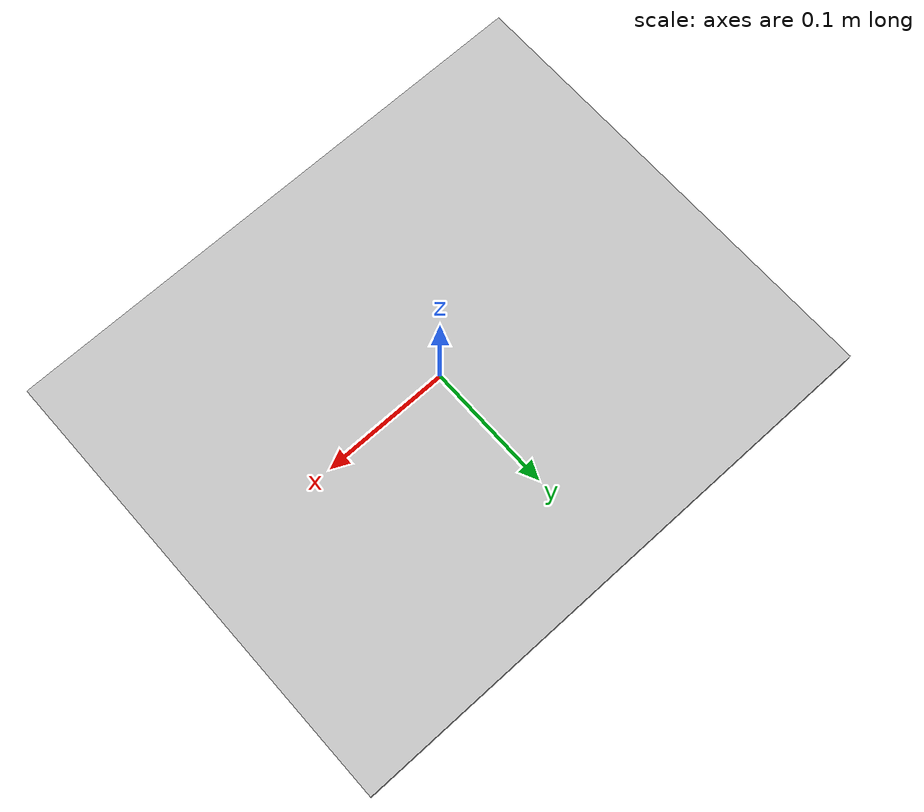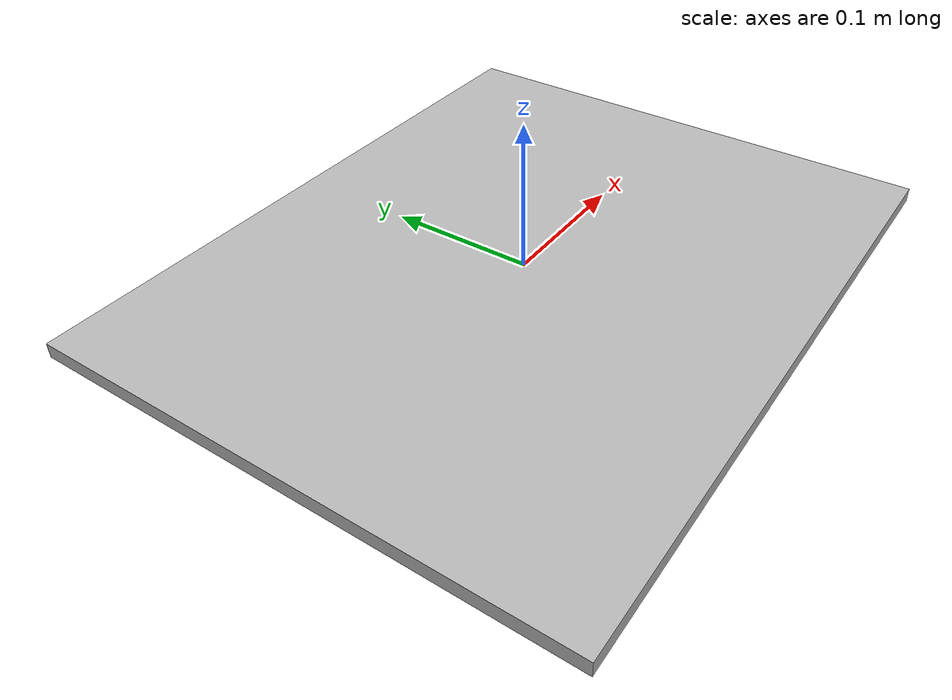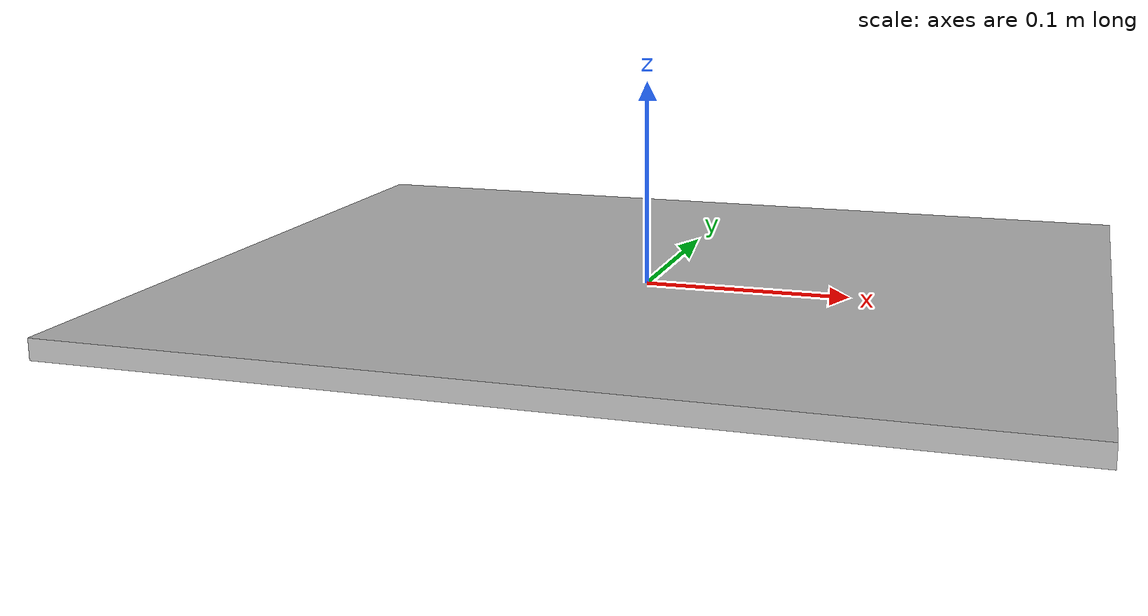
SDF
<?xml version='1.0'?>
<sdf version='1.6'>
	<model name='checkerboard'>
	  <link name='link'>
		<inertial>
		  <mass>1</mass>
		  <inertia>
			<ixx>0.166667</ixx>
			<ixy>0</ixy>
			<ixz>0</ixz>
			<iyy>0.166667</iyy>
			<iyz>0</iyz>
			<izz>0.166667</izz>
		  </inertia>
		  <pose frame=''>0 0 0 0 0 0</pose>
		</inertial>
		<self_collide>0</self_collide>
		<enable_wind>0</enable_wind>
		<kinematic>0</kinematic>
		<pose frame=''>0 0 0 0 0 0</pose>
		<gravity>1</gravity>
		<visual name='visual'>
		  <geometry>
			<mesh>
				<uri>model://checkerboard/meshes/checkerboard.dae</uri>
			</mesh>
		  </geometry>
            <material>
                <script>
                    <uri>model://checkerboard/materials/scripts</uri>
                    <uri>model://checkerboard/materials/textures</uri>
                    <name>checkerMat/Diffuse</name>
                </script>
            </material>
		  <pose frame=''>0 0 0 0 0 0</pose>
		  <transparency>0</transparency>
		  <cast_shadows>1</cast_shadows>
		</visual>
		<collision name='collision'>
		  <pose frame=''>0 0 0 0 0 0</pose>
		  <geometry>
			<box>
			  <size>0.44 0.36 0.01</size>
			</box>
		  </geometry>
		</collision>
	  </link>
	  <static>0</static>
	  <allow_auto_disable>1</allow_auto_disable>
	</model>
</sdf>
